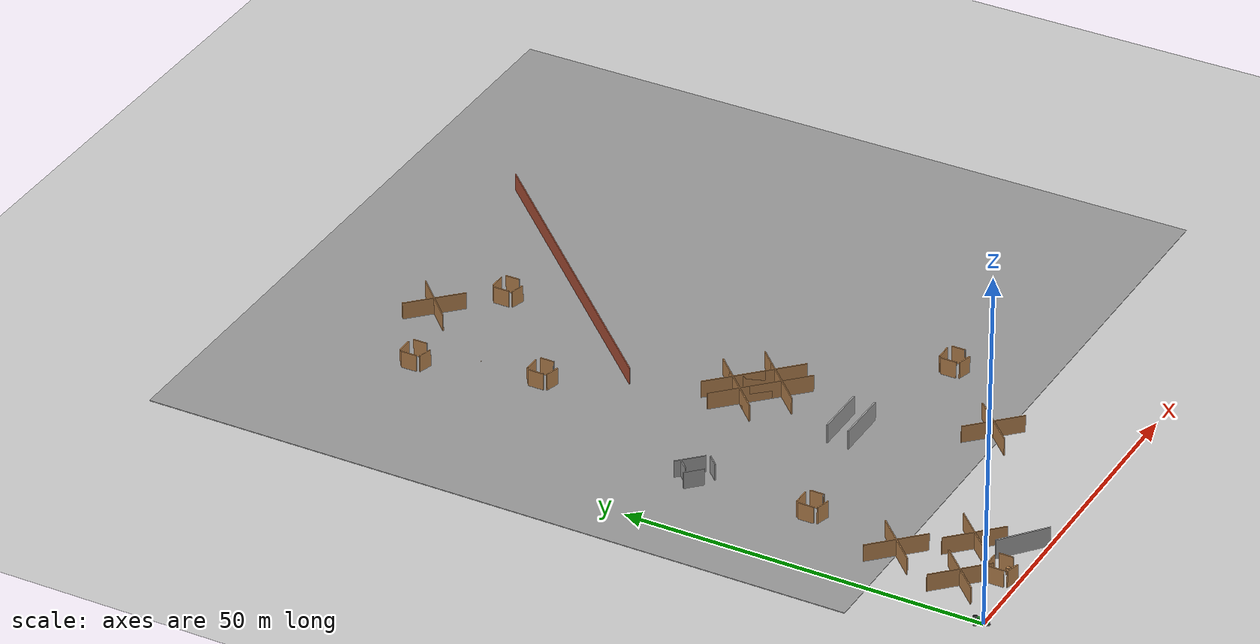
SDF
<sdf version="1.5">
 <world name="default">
  <model name="mard"><static>0</static></model>
  <model name="ground_plane">
   <static>1</static>
   <link name="link">
    <collision name="collision">
     <geometry><plane><normal>0 0 1</normal><size>100 100</size></plane></geometry>
     <surface><friction><ode><mu>100</mu><mu2>50</mu2></ode></friction></surface>
    </collision>
    <visual name="visual">
     <cast_shadows>0</cast_shadows>
     <geometry><plane><normal>0 0 1</normal><size>100 100</size></plane></geometry>
     <material>
      <script><uri>file://media/materials/scripts/gazebo.material</uri><name>Gazebo/Grey</name></script>
     </material>
    </visual>
   </link>
  </model>
  <model name="ground_plane_3">
   <static>1</static>
   <link name="link">
    <collision name="collision">
     <geometry><plane><normal>0 0 1</normal><size>100 100</size></plane></geometry>
     <surface><friction><ode><mu>100</mu><mu2>50</mu2></ode></friction></surface>
    </collision>
    <visual name="visual">
     <cast_shadows>0</cast_shadows>
     <geometry><plane><normal>0 0 1</normal><size>100 100</size></plane></geometry>
     <material>
      <script><uri>file://media/materials/scripts/gazebo.material</uri><name>Gazebo/Grey</name></script>
     </material>
    </visual>
   </link>
   <pose>44 66 0 0 -0 0</pose>
  </model>
  <model name="wall1_clone_3">
   <pose>43.532 81.5625 0 0 -0 0.808575</pose>
   <link name="Wall_0">
    <collision name="Wall_0_Collision">
     <geometry><box><size>50 0.15 2.5</size></box></geometry>
     <pose>0 0 1.25 0 -0 0</pose>
    </collision>
    <visual name="Wall_0_Visual">
     <pose>0 0 1.25 0 -0 0</pose>
     <geometry><box><size>50 0.15 2.5</size></box></geometry>
     <material>
      <script><uri>file://media/materials/scripts/gazebo.material</uri><name>Gazebo/Bricks</name></script>
      <ambient>1 1 1 1</ambient>
     </material>
    </visual>
    <pose>1e-06 0 0 0 -0 3.14159</pose>
   </link>
   <static>1</static>
  </model>
  <model name="car">
   <link name="chassis">
    <pose>0 0 0.3 0 -0 0</pose>
    <collision name="collision"><geometry><box><size>2 1 0.2</size></box></geometry></collision>
    <visual name="visual">
     <geometry><box><size>2 1 0.2</size></box></geometry>
     <material>
      <script><uri>file://media/materials/scripts/gazebo.material</uri><name>Gazebo/Green</name></script>
     </material>
    </visual>
    <inertial>
     <inertia><ixx>1</ixx><ixy>0</ixy><ixz>0</ixz><iyy>1</iyy><iyz>0</iyz><izz>1</izz></inertia>
     <mass>1</mass>
    </inertial>
   </link>
   <link name="front_left_wheel">
    <pose>0.8 0.6 0.3 0 1.5707 1.5707</pose>
    <collision name="collision">
     <geometry><cylinder><radius>0.3</radius><length>0.1</length></cylinder></geometry>
    </collision>
    <visual name="visual">
     <geometry><cylinder><radius>0.3</radius><length>0.1</length></cylinder></geometry>
     <material>
      <script><uri>file://media/materials/scripts/gazebo.material</uri><name>Gazebo/Black</name></script>
     </material>
    </visual>
    <inertial>
     <inertia><ixx>1</ixx><ixy>0</ixy><ixz>0</ixz><iyy>1</iyy><iyz>0</iyz><izz>1</izz></inertia>
     <mass>1</mass>
    </inertial>
   </link>
   <link name="front_right_wheel">
    <pose>0.8 -0.6 0.3 0 1.5707 1.5707</pose>
    <collision name="collision">
     <geometry><cylinder><radius>0.3</radius><length>0.1</length></cylinder></geometry>
    </collision>
    <visual name="visual">
     <geometry><cylinder><radius>0.3</radius><length>0.1</length></cylinder></geometry>
     <material>
      <script><uri>file://media/materials/scripts/gazebo.material</uri><name>Gazebo/Black</name></script>
     </material>
    </visual>
    <inertial>
     <inertia><ixx>1</ixx><ixy>0</ixy><ixz>0</ixz><iyy>1</iyy><iyz>0</iyz><izz>1</izz></inertia>
     <mass>1</mass>
    </inertial>
   </link>
   <link name="back_right_wheel">
    <pose>-0.8 -0.6 0.3 0 1.5707 1.5707</pose>
    <collision name="collision">
     <geometry><cylinder><radius>0.3</radius><length>0.1</length></cylinder></geometry>
    </collision>
    <visual name="visual">
     <geometry><cylinder><radius>0.3</radius><length>0.1</length></cylinder></geometry>
     <material>
      <script><uri>file://media/materials/scripts/gazebo.material</uri><name>Gazebo/Black</name></script>
     </material>
    </visual>
    <inertial>
     <inertia><ixx>1</ixx><ixy>0</ixy><ixz>0</ixz><iyy>1</iyy><iyz>0</iyz><izz>1</izz></inertia>
     <mass>1</mass>
    </inertial>
   </link>
   <link name="back_left_wheel">
    <pose>-0.8 0.6 0.3 0 1.5707 1.5707</pose>
    <collision name="collision">
     <geometry><cylinder><radius>0.3</radius><length>0.1</length></cylinder></geometry>
    </collision>
    <visual name="visual">
     <geometry><cylinder><radius>0.3</radius><length>0.1</length></cylinder></geometry>
     <material>
      <script><uri>file://media/materials/scripts/gazebo.material</uri><name>Gazebo/Black</name></script>
     </material>
    </visual>
    <inertial>
     <inertia><ixx>1</ixx><ixy>0</ixy><ixz>0</ixz><iyy>1</iyy><iyz>0</iyz><izz>1</izz></inertia>
     <mass>1</mass>
    </inertial>
   </link>
   <link name="gas_pedal">
    <pose>0.3 0.1 0.5 0 -0 0</pose>
    <collision name="collision"><geometry><box><size>0.1 0.1 0.1</size></box></geometry></collision>
    <visual name="visual">
     <geometry><box><size>0.1 0.1 0.1</size></box></geometry>
     <material>
      <script><uri>file://media/materials/scripts/gazebo.material</uri><name>Gazebo/Red</name></script>
     </material>
    </visual>
    <inertial>
     <inertia><ixx>1</ixx><ixy>0</ixy><ixz>0</ixz><iyy>1</iyy><iyz>0</iyz><izz>1</izz></inertia>
     <mass>1</mass>
    </inertial>
   </link>
   <link name="brake_pedal">
    <pose>0.3 0.25 0.5 0 -0 0</pose>
    <collision name="collision"><geometry><box><size>0.1 0.1 0.1</size></box></geometry></collision>
    <visual name="visual">
     <geometry><box><size>0.1 0.1 0.1</size></box></geometry>
     <material>
      <script><uri>file://media/materials/scripts/gazebo.material</uri><name>Gazebo/Blue</name></script>
     </material>
    </visual>
    <inertial>
     <inertia><ixx>1</ixx><ixy>0</ixy><ixz>0</ixz><iyy>1</iyy><iyz>0</iyz><izz>1</izz></inertia>
     <mass>1</mass>
    </inertial>
   </link>
   <link name="steering_wheel">
    <pose>0.3 0.2 1 0 1.5707 0</pose>
    <collision name="collision">
     <geometry><cylinder><radius>0.1</radius><length>0.01</length></cylinder></geometry>
    </collision>
    <visual name="visual">
     <geometry><cylinder><radius>0.1</radius><length>0.01</length></cylinder></geometry>
     <material>
      <script><uri>file://media/materials/scripts/gazebo.material</uri><name>Gazebo/Blue</name></script>
     </material>
    </visual>
    <inertial>
     <inertia><ixx>1</ixx><ixy>0</ixy><ixz>0</ixz><iyy>1</iyy><iyz>0</iyz><izz>1</izz></inertia>
     <mass>1</mass>
    </inertial>
   </link>
   <joint name="gas_joint" type="prismatic">
    <parent>chassis</parent>
    <child>gas_pedal</child>
    <axis>
     <xyz>1 0 0</xyz>
     <limit><lower>0</lower><upper>0.2</upper></limit>
     <use_parent_model_frame>1</use_parent_model_frame>
     <dynamics><spring_reference>0</spring_reference><spring_stiffness>0</spring_stiffness></dynamics>
    </axis>
   </joint>
   <joint name="brake_joint" type="prismatic">
    <parent>chassis</parent>
    <child>brake_pedal</child>
    <axis>
     <xyz>1 0 0</xyz>
     <limit><lower>0</lower><upper>0.2</upper></limit>
     <use_parent_model_frame>1</use_parent_model_frame>
     <dynamics><spring_reference>0</spring_reference><spring_stiffness>0</spring_stiffness></dynamics>
    </axis>
   </joint>
   <joint name="steering_joint" type="revolute">
    <parent>chassis</parent>
    <child>steering_wheel</child>
    <axis>
     <xyz>1 0 0</xyz>
     <limit><lower>-7.853</lower><upper>7.853</upper></limit>
     <use_parent_model_frame>1</use_parent_model_frame>
     <dynamics><spring_reference>0</spring_reference><spring_stiffness>0</spring_stiffness></dynamics>
    </axis>
   </joint>
   <joint name="front_left_joint" type="revolute2">
    <parent>chassis</parent>
    <child>front_left_wheel</child>
    <axis>
     <xyz>0 0 1</xyz>
     <limit><lower>-0.013155</lower><upper>-0.013155</upper></limit>
     <use_parent_model_frame>1</use_parent_model_frame>
     <dynamics><spring_reference>0</spring_reference><spring_stiffness>0</spring_stiffness></dynamics>
    </axis>
    <axis2>
     <xyz>0 1 0</xyz>
     <use_parent_model_frame>1</use_parent_model_frame>
     <dynamics><spring_reference>0</spring_reference><spring_stiffness>0</spring_stiffness></dynamics>
    </axis2>
    <physics><ode><limit><cfm>0</cfm><erp>0.9</erp></limit></ode></physics>
   </joint>
   <joint name="front_right_joint" type="revolute2">
    <parent>chassis</parent>
    <child>front_right_wheel</child>
    <axis>
     <xyz>0 0 1</xyz>
     <limit><lower>-0.013155</lower><upper>-0.013155</upper></limit>
     <use_parent_model_frame>1</use_parent_model_frame>
     <dynamics><spring_reference>0</spring_reference><spring_stiffness>0</spring_stiffness></dynamics>
    </axis>
    <axis2>
     <xyz>0 1 0</xyz>
     <use_parent_model_frame>1</use_parent_model_frame>
     <dynamics><spring_reference>0</spring_reference><spring_stiffness>0</spring_stiffness></dynamics>
    </axis2>
    <physics><ode><limit><cfm>0</cfm><erp>0.9</erp></limit></ode></physics>
   </joint>
   <joint name="back_right_joint" type="revolute2">
    <parent>chassis</parent>
    <child>back_right_wheel</child>
    <axis>
     <xyz>0 0 1</xyz>
     <limit><lower>0</lower><upper>0</upper></limit>
     <use_parent_model_frame>1</use_parent_model_frame>
     <dynamics><spring_reference>0</spring_reference><spring_stiffness>0</spring_stiffness></dynamics>
    </axis>
    <axis2>
     <xyz>0 1 0</xyz>
     <use_parent_model_frame>1</use_parent_model_frame>
     <dynamics><spring_reference>0</spring_reference><spring_stiffness>0</spring_stiffness></dynamics>
    </axis2>
    <physics><ode><limit><cfm>0</cfm><erp>0.9</erp></limit></ode></physics>
   </joint>
   <joint name="back_left_joint" type="revolute2">
    <parent>chassis</parent>
    <child>back_left_wheel</child>
    <axis>
     <xyz>0 0 1</xyz>
     <limit><lower>0</lower><upper>0</upper></limit>
     <use_parent_model_frame>1</use_parent_model_frame>
     <dynamics><spring_reference>0</spring_reference><spring_stiffness>0</spring_stiffness></dynamics>
    </axis>
    <axis2>
     <xyz>0 1 0</xyz>
     <use_parent_model_frame>1</use_parent_model_frame>
     <dynamics><spring_reference>0</spring_reference><spring_stiffness>0</spring_stiffness></dynamics>
    </axis2>
    <physics><ode><limit><cfm>0</cfm><erp>0.9</erp></limit></ode></physics>
   </joint>
   <plugin name="vehicle" filename="libVehiclePlugin.so">
    <front_left>front_left_joint</front_left>
    <front_right>front_right_joint</front_right>
    <back_left>back_left_joint</back_left>
    <back_right>back_right_joint</back_right>
    <gas>gas_joint</gas>
    <brake>brake_joint</brake>
    <steering>steering_joint</steering>
    <front_power>10</front_power>
    <rear_power>10</rear_power>
    <tire_angle_range>0.5</tire_angle_range>
    <max_speed>10</max_speed>
    <aero_load>0.1</aero_load>
   </plugin>
   <pose>-0.565154 0.010788 0.649842 -1.56757 0.001139 -1.11247</pose>
  </model>
  <model name="obs3_2">
   <pose>29 49 0 0 -0 0</pose>
   <link name="Wall_0">
    <collision name="Wall_0_Collision">
     <geometry><box><size>8.63528 0.15 2.5</size></box></geometry>
     <pose>0 0 1.25 0 -0 0</pose>
    </collision>
    <visual name="Wall_0_Visual">
     <pose>0 0 1.25 0 -0 0</pose>
     <geometry><box><size>8.63528 0.15 2.5</size></box></geometry>
     <material>
      <script><uri>file://media/materials/scripts/gazebo.material</uri><name>Gazebo/Wood</name></script>
      <ambient>1 1 1 1</ambient>
     </material>
    </visual>
    <pose>0 0 0 0 0 -0.785398</pose>
   </link>
   <link name="Wall_2">
    <collision name="Wall_2_Collision">
     <geometry><box><size>8.63528 0.15 2.5</size></box></geometry>
     <pose>0 0 1.25 0 -0 0</pose>
    </collision>
    <visual name="Wall_2_Visual">
     <pose>0 0 1.25 0 -0 0</pose>
     <geometry><box><size>8.63528 0.15 2.5</size></box></geometry>
     <material>
      <script><uri>file://media/materials/scripts/gazebo.material</uri><name>Gazebo/Wood</name></script>
      <ambient>1 1 1 1</ambient>
     </material>
    </visual>
    <pose>0 0 0 0 0 -2.35619</pose>
   </link>
   <static>1</static>
  </model>
  <model name="obs3_7">
   <pose>8 16 0 0 -0 0</pose>
   <link name="Wall_0">
    <collision name="Wall_0_Collision">
     <geometry><box><size>8.63528 0.15 2.5</size></box></geometry>
     <pose>0 0 1.25 0 -0 0</pose>
    </collision>
    <visual name="Wall_0_Visual">
     <pose>0 0 1.25 0 -0 0</pose>
     <geometry><box><size>8.63528 0.15 2.5</size></box></geometry>
     <material>
      <script><uri>file://media/materials/scripts/gazebo.material</uri><name>Gazebo/Wood</name></script>
      <ambient>1 1 1 1</ambient>
     </material>
    </visual>
    <pose>0 0 0 0 0 -0.785398</pose>
   </link>
   <link name="Wall_2">
    <collision name="Wall_2_Collision">
     <geometry><box><size>8.63528 0.15 2.5</size></box></geometry>
     <pose>0 0 1.25 0 -0 0</pose>
    </collision>
    <visual name="Wall_2_Visual">
     <pose>0 0 1.25 0 -0 0</pose>
     <geometry><box><size>8.63528 0.15 2.5</size></box></geometry>
     <material>
      <script><uri>file://media/materials/scripts/gazebo.material</uri><name>Gazebo/Wood</name></script>
      <ambient>1 1 1 1</ambient>
     </material>
    </visual>
    <pose>0 0 0 0 0 -2.35619</pose>
   </link>
   <static>1</static>
  </model>
  <model name="obs1_5">
   <pose>11 29 0 0 -0 0</pose>
   <link name="Wall_10">
    <collision name="Wall_10_Collision">
     <geometry><box><size>2 0.15 2.5</size></box></geometry>
     <pose>0 0 1.25 0 -0 0</pose>
    </collision>
    <visual name="Wall_10_Visual">
     <pose>0 0 1.25 0 -0 0</pose>
     <geometry><box><size>2 0.15 2.5</size></box></geometry>
     <material>
      <script><uri>file://media/materials/scripts/gazebo.material</uri><name>Gazebo/Wood</name></script>
      <ambient>1 1 1 1</ambient>
     </material>
    </visual>
    <pose>-0.505188 -1.46687 0 0 0 -0.261799</pose>
   </link>
   <link name="Wall_2">
    <collision name="Wall_2_Collision">
     <geometry><box><size>2.25 0.15 2.5</size></box></geometry>
     <pose>0 0 1.25 0 -0 0</pose>
    </collision>
    <visual name="Wall_2_Visual">
     <pose>0 0 1.25 0 -0 0</pose>
     <geometry><box><size>2.25 0.15 2.5</size></box></geometry>
     <material>
      <script><uri>file://media/materials/scripts/gazebo.material</uri><name>Gazebo/Wood</name></script>
      <ambient>1 1 1 1</ambient>
     </material>
    </visual>
    <pose>-1.58039 0.313508 0 0 0 -1.5708</pose>
   </link>
   <link name="Wall_5">
    <collision name="Wall_5_Collision">
     <geometry><box><size>2.25 0.15 2.5</size></box></geometry>
     <pose>0 0 1.25 0 -0 0</pose>
    </collision>
    <visual name="Wall_5_Visual">
     <pose>0 0 1.25 0 -0 0</pose>
     <geometry><box><size>2.25 0.15 2.5</size></box></geometry>
     <material>
      <script><uri>file://media/materials/scripts/gazebo.material</uri><name>Gazebo/Wood</name></script>
      <ambient>1 1 1 1</ambient>
     </material>
    </visual>
    <pose>-0.185262 1.72313 0 0 -0 0</pose>
   </link>
   <link name="Wall_7">
    <collision name="Wall_7_Collision">
     <geometry><box><size>2 0.15 2.5</size></box></geometry>
     <pose>0 0 1.25 0 -0 0</pose>
    </collision>
    <visual name="Wall_7_Visual">
     <pose>0 0 1.25 0 -0 0</pose>
     <geometry><box><size>2 0.15 2.5</size></box></geometry>
     <material>
      <script><uri>file://media/materials/scripts/gazebo.material</uri><name>Gazebo/Wood</name></script>
      <ambient>1 1 1 1</ambient>
     </material>
    </visual>
    <pose>1.58039 0.398833 0 0 0 -1.5708</pose>
   </link>
   <link name="Wall_8">
    <collision name="Wall_8_Collision">
     <geometry><box><size>0.15 0.15 2.5</size></box></geometry>
     <pose>0 0 1.25 0 -0 0</pose>
    </collision>
    <visual name="Wall_8_Visual">
     <pose>0 0 1.25 0 -0 0</pose>
     <geometry><box><size>0.15 0.15 2.5</size></box></geometry>
     <material>
      <script><uri>file://media/materials/scripts/gazebo.material</uri><name>Gazebo/Grey</name></script>
      <ambient>1 1 1 1</ambient>
     </material>
    </visual>
    <pose>1.58039 -0.526167 0 0 -0 0</pose>
   </link>
   <static>1</static>
  </model>
  <model name="obs2_5">
   <pose>11 46 0 0 -0 0</pose>
   <link name="Wall_0">
    <collision name="Wall_0_Collision">
     <geometry><box><size>2 0.15 2.5</size></box></geometry>
     <pose>0 0 1.25 0 -0 0</pose>
    </collision>
    <visual name="Wall_0_Visual">
     <pose>0 0 1.25 0 -0 0</pose>
     <geometry><box><size>2 0.15 2.5</size></box></geometry>
     <material>
      <script><uri>file://media/materials/scripts/gazebo.material</uri><name>Gazebo/Grey</name></script>
      <ambient>1 1 1 1</ambient>
     </material>
    </visual>
    <pose>-0.796332 1.10862 0 0 -0 0.785398</pose>
   </link>
   <link name="Wall_2">
    <collision name="Wall_2_Collision">
     <geometry><box><size>4.25 0.15 2.5</size></box></geometry>
     <pose>0 0 1.25 0 -0 0</pose>
    </collision>
    <visual name="Wall_2_Visual">
     <pose>0 0 1.25 0 -0 0</pose>
     <geometry><box><size>4.25 0.15 2.5</size></box></geometry>
     <material>
      <script><uri>file://media/materials/scripts/gazebo.material</uri><name>Gazebo/Grey</name></script>
      <ambient>1 1 1 1</ambient>
     </material>
    </visual>
    <pose>0.773928 0.982661 0 0 0 -0.785398</pose>
   </link>
   <link name="Wall_4">
    <collision name="Wall_4_Collision">
     <geometry><box><size>2.75 0.15 2.5</size></box></geometry>
     <pose>0 0 1.25 0 -0 0</pose>
    </collision>
    <visual name="Wall_4_Visual">
     <pose>0 0 1.25 0 -0 0</pose>
     <geometry><box><size>2.75 0.15 2.5</size></box></geometry>
     <material>
      <script><uri>file://media/materials/scripts/gazebo.material</uri><name>Gazebo/Grey</name></script>
      <ambient>1 1 1 1</ambient>
     </material>
    </visual>
    <pose>-1.45556 -0.740711 0 0 0 -0.785398</pose>
   </link>
   <link name="Wall_6">
    <collision name="Wall_6_Collision">
     <geometry><box><size>2 0.15 2.5</size></box></geometry>
     <pose>0 0 1.25 0 -0 0</pose>
    </collision>
    <visual name="Wall_6_Visual">
     <pose>0 0 1.25 0 -0 0</pose>
     <geometry><box><size>2 0.15 2.5</size></box></geometry>
     <material>
      <script><uri>file://media/materials/scripts/gazebo.material</uri><name>Gazebo/Grey</name></script>
      <ambient>1 1 1 1</ambient>
     </material>
    </visual>
    <pose>1.72073 -1.77816 0 0 -0 0.785398</pose>
   </link>
   <static>1</static>
  </model>
  <model name="obs3_2_clone">
   <pose>31 51 0 0 -0 0</pose>
   <link name="Wall_0">
    <collision name="Wall_0_Collision">
     <geometry><box><size>8.63528 0.15 2.5</size></box></geometry>
     <pose>0 0 1.25 0 -0 0</pose>
    </collision>
    <visual name="Wall_0_Visual">
     <pose>0 0 1.25 0 -0 0</pose>
     <geometry><box><size>8.63528 0.15 2.5</size></box></geometry>
     <material>
      <script><uri>file://media/materials/scripts/gazebo.material</uri><name>Gazebo/Wood</name></script>
      <ambient>1 1 1 1</ambient>
     </material>
    </visual>
    <pose>0 0 0 0 0 -0.785398</pose>
   </link>
   <link name="Wall_2">
    <collision name="Wall_2_Collision">
     <geometry><box><size>8.63528 0.15 2.5</size></box></geometry>
     <pose>0 0 1.25 0 -0 0</pose>
    </collision>
    <visual name="Wall_2_Visual">
     <pose>0 0 1.25 0 -0 0</pose>
     <geometry><box><size>8.63528 0.15 2.5</size></box></geometry>
     <material>
      <script><uri>file://media/materials/scripts/gazebo.material</uri><name>Gazebo/Wood</name></script>
      <ambient>1 1 1 1</ambient>
     </material>
    </visual>
    <pose>0 0 0 0 0 -2.35619</pose>
   </link>
   <static>1</static>
  </model>
  <model name="obs3_2_clone_0">
   <pose>33 45 0 0 -0 0</pose>
   <link name="Wall_0">
    <collision name="Wall_0_Collision">
     <geometry><box><size>8.63528 0.15 2.5</size></box></geometry>
     <pose>0 0 1.25 0 -0 0</pose>
    </collision>
    <visual name="Wall_0_Visual">
     <pose>0 0 1.25 0 -0 0</pose>
     <geometry><box><size>8.63528 0.15 2.5</size></box></geometry>
     <material>
      <script><uri>file://media/materials/scripts/gazebo.material</uri><name>Gazebo/Wood</name></script>
      <ambient>1 1 1 1</ambient>
     </material>
    </visual>
    <pose>0 0 0 0 0 -0.785398</pose>
   </link>
   <link name="Wall_2">
    <collision name="Wall_2_Collision">
     <geometry><box><size>8.63528 0.15 2.5</size></box></geometry>
     <pose>0 0 1.25 0 -0 0</pose>
    </collision>
    <visual name="Wall_2_Visual">
     <pose>0 0 1.25 0 -0 0</pose>
     <geometry><box><size>8.63528 0.15 2.5</size></box></geometry>
     <material>
      <script><uri>file://media/materials/scripts/gazebo.material</uri><name>Gazebo/Wood</name></script>
      <ambient>1 1 1 1</ambient>
     </material>
    </visual>
    <pose>0 0 0 0 0 -2.35619</pose>
   </link>
   <static>1</static>
  </model>
  <model name="obs3_2_clone_1">
   <pose>35 47 0 0 -0 0</pose>
   <link name="Wall_0">
    <collision name="Wall_0_Collision">
     <geometry><box><size>8.63528 0.15 2.5</size></box></geometry>
     <pose>0 0 1.25 0 -0 0</pose>
    </collision>
    <visual name="Wall_0_Visual">
     <pose>0 0 1.25 0 -0 0</pose>
     <geometry><box><size>8.63528 0.15 2.5</size></box></geometry>
     <material>
      <script><uri>file://media/materials/scripts/gazebo.material</uri><name>Gazebo/Wood</name></script>
      <ambient>1 1 1 1</ambient>
     </material>
    </visual>
    <pose>0 0 0 0 0 -0.785398</pose>
   </link>
   <link name="Wall_2">
    <collision name="Wall_2_Collision">
     <geometry><box><size>8.63528 0.15 2.5</size></box></geometry>
     <pose>0 0 1.25 0 -0 0</pose>
    </collision>
    <visual name="Wall_2_Visual">
     <pose>0 0 1.25 0 -0 0</pose>
     <geometry><box><size>8.63528 0.15 2.5</size></box></geometry>
     <material>
      <script><uri>file://media/materials/scripts/gazebo.material</uri><name>Gazebo/Wood</name></script>
      <ambient>1 1 1 1</ambient>
     </material>
    </visual>
    <pose>0 0 0 0 0 -2.35619</pose>
   </link>
   <static>1</static>
  </model>
  <model name="obs3_4_clone">
   <pose>37.4503 17 0 0 -0 0</pose>
   <link name="Wall_0">
    <collision name="Wall_0_Collision">
     <geometry><box><size>8.63528 0.15 2.5</size></box></geometry>
     <pose>0 0 1.25 0 -0 0</pose>
    </collision>
    <visual name="Wall_0_Visual">
     <pose>0 0 1.25 0 -0 0</pose>
     <geometry><box><size>8.63528 0.15 2.5</size></box></geometry>
     <material>
      <script><uri>file://media/materials/scripts/gazebo.material</uri><name>Gazebo/Wood</name></script>
      <ambient>1 1 1 1</ambient>
     </material>
    </visual>
    <pose>0 0 0 0 0 -0.785398</pose>
   </link>
   <link name="Wall_2">
    <collision name="Wall_2_Collision">
     <geometry><box><size>8.63528 0.15 2.5</size></box></geometry>
     <pose>0 0 1.25 0 -0 0</pose>
    </collision>
    <visual name="Wall_2_Visual">
     <pose>0 0 1.25 0 -0 0</pose>
     <geometry><box><size>8.63528 0.15 2.5</size></box></geometry>
     <material>
      <script><uri>file://media/materials/scripts/gazebo.material</uri><name>Gazebo/Wood</name></script>
      <ambient>1 1 1 1</ambient>
     </material>
    </visual>
    <pose>0 0 0 0 0 -2.35619</pose>
   </link>
   <static>1</static>
  </model>
  <model name="obs1_4_clone">
   <pose>49 28 0 0 -0 0</pose>
   <link name="Wall_10">
    <collision name="Wall_10_Collision">
     <geometry><box><size>2 0.15 2.5</size></box></geometry>
     <pose>0 0 1.25 0 -0 0</pose>
    </collision>
    <visual name="Wall_10_Visual">
     <pose>0 0 1.25 0 -0 0</pose>
     <geometry><box><size>2 0.15 2.5</size></box></geometry>
     <material>
      <script><uri>file://media/materials/scripts/gazebo.material</uri><name>Gazebo/Wood</name></script>
      <ambient>1 1 1 1</ambient>
     </material>
    </visual>
    <pose>-0.505188 -1.46687 0 0 0 -0.261799</pose>
   </link>
   <link name="Wall_2">
    <collision name="Wall_2_Collision">
     <geometry><box><size>2.25 0.15 2.5</size></box></geometry>
     <pose>0 0 1.25 0 -0 0</pose>
    </collision>
    <visual name="Wall_2_Visual">
     <pose>0 0 1.25 0 -0 0</pose>
     <geometry><box><size>2.25 0.15 2.5</size></box></geometry>
     <material>
      <script><uri>file://media/materials/scripts/gazebo.material</uri><name>Gazebo/Wood</name></script>
      <ambient>1 1 1 1</ambient>
     </material>
    </visual>
    <pose>-1.58039 0.313508 0 0 0 -1.5708</pose>
   </link>
   <link name="Wall_5">
    <collision name="Wall_5_Collision">
     <geometry><box><size>2.25 0.15 2.5</size></box></geometry>
     <pose>0 0 1.25 0 -0 0</pose>
    </collision>
    <visual name="Wall_5_Visual">
     <pose>0 0 1.25 0 -0 0</pose>
     <geometry><box><size>2.25 0.15 2.5</size></box></geometry>
     <material>
      <script><uri>file://media/materials/scripts/gazebo.material</uri><name>Gazebo/Wood</name></script>
      <ambient>1 1 1 1</ambient>
     </material>
    </visual>
    <pose>-0.185262 1.72313 0 0 -0 0</pose>
   </link>
   <link name="Wall_7">
    <collision name="Wall_7_Collision">
     <geometry><box><size>2 0.15 2.5</size></box></geometry>
     <pose>0 0 1.25 0 -0 0</pose>
    </collision>
    <visual name="Wall_7_Visual">
     <pose>0 0 1.25 0 -0 0</pose>
     <geometry><box><size>2 0.15 2.5</size></box></geometry>
     <material>
      <script><uri>file://media/materials/scripts/gazebo.material</uri><name>Gazebo/Wood</name></script>
      <ambient>1 1 1 1</ambient>
     </material>
    </visual>
    <pose>1.58039 0.398833 0 0 0 -1.5708</pose>
   </link>
   <link name="Wall_8">
    <collision name="Wall_8_Collision">
     <geometry><box><size>0.15 0.15 2.5</size></box></geometry>
     <pose>0 0 1.25 0 -0 0</pose>
    </collision>
    <visual name="Wall_8_Visual">
     <pose>0 0 1.25 0 -0 0</pose>
     <geometry><box><size>0.15 0.15 2.5</size></box></geometry>
     <material>
      <script><uri>file://media/materials/scripts/gazebo.material</uri><name>Gazebo/Grey</name></script>
      <ambient>1 1 1 1</ambient>
     </material>
    </visual>
    <pose>1.58039 -0.526167 0 0 -0 0</pose>
   </link>
   <static>1</static>
  </model>
  <model name="grey_wall_clone_1">
   <static>1</static>
   <link name="link">
    <pose>0 0 1.4 0 -0 0</pose>
    <collision name="collision"><geometry><box><size>7.5 0.2 2.8</size></box></geometry></collision>
    <visual name="visual">
     <cast_shadows>0</cast_shadows>
     <geometry><box><size>7.5 0.2 2.8</size></box></geometry>
     <material>
      <script>
       <uri>model://grey_wall/materials/scripts</uri>
       <uri>model://grey_wall/materials/textures</uri>
       <name>vrc/grey_wall</name>
      </script>
     </material>
    </visual>
   </link>
   <pose>30 35 0 0 -0 0</pose>
  </model>
  <model name="grey_wall_clone_1_clone">
   <static>1</static>
   <link name="link">
    <pose>0 0 1.4 0 -0 0</pose>
    <collision name="collision"><geometry><box><size>7.5 0.2 2.8</size></box></geometry></collision>
    <visual name="visual">
     <cast_shadows>0</cast_shadows>
     <geometry><box><size>7.5 0.2 2.8</size></box></geometry>
     <material>
      <script>
       <uri>model://grey_wall/materials/scripts</uri>
       <uri>model://grey_wall/materials/textures</uri>
       <name>vrc/grey_wall</name>
      </script>
     </material>
    </visual>
   </link>
   <pose>30 32 0 0 -0 0</pose>
  </model>
  <model name="wood_cube_10cm">
   <link name="link">
    <pose>0 0 0.05 0 -0 0</pose>
    <inertial>
     <mass>0.5167</mass>
     <inertia>
      <ixx>0.000861167</ixx>
      <ixy>0</ixy>
      <ixz>0</ixz>
      <iyy>0.000861167</iyy>
      <iyz>0</iyz>
      <izz>0.000861167</izz>
     </inertia>
    </inertial>
    <collision name="collision">
     <geometry><box><size>0.1 0.1 0.1</size></box></geometry>
     <surface>
      <contact>
       <poissons_ratio>0.347</poissons_ratio>
       <elastic_modulus>8.8e+09</elastic_modulus>
       <ode><kp>100000</kp><kd>100</kd><max_vel>100</max_vel><min_depth>0.001</min_depth></ode>
      </contact>
      <friction>
       <torsional>
        <coefficient>1</coefficient>
        <use_patch_radius>0</use_patch_radius>
        <surface_radius>0.01</surface_radius>
       </torsional>
      </friction>
     </surface>
    </collision>
    <visual name="visual">
     <geometry><box><size>0.1 0.1 0.1</size></box></geometry>
     <material>
      <script><uri>file://media/materials/scripts/gazebo.material</uri><name>Gazebo/Wood</name></script>
     </material>
    </visual>
   </link>
   <pose>22 83 -0.001001 0 -0 0</pose>
  </model>
  <model name="obs1_5_clone">
   <pose>9.76933 2.06869 0 0 -0 0</pose>
   <link name="Wall_10">
    <collision name="Wall_10_Collision">
     <geometry><box><size>2 0.15 2.5</size></box></geometry>
     <pose>0 0 1.25 0 -0 0</pose>
    </collision>
    <visual name="Wall_10_Visual">
     <pose>0 0 1.25 0 -0 0</pose>
     <geometry><box><size>2 0.15 2.5</size></box></geometry>
     <material>
      <script><uri>file://media/materials/scripts/gazebo.material</uri><name>Gazebo/Wood</name></script>
      <ambient>1 1 1 1</ambient>
     </material>
    </visual>
    <pose>-0.505188 -1.46687 0 0 0 -0.261799</pose>
   </link>
   <link name="Wall_2">
    <collision name="Wall_2_Collision">
     <geometry><box><size>2.25 0.15 2.5</size></box></geometry>
     <pose>0 0 1.25 0 -0 0</pose>
    </collision>
    <visual name="Wall_2_Visual">
     <pose>0 0 1.25 0 -0 0</pose>
     <geometry><box><size>2.25 0.15 2.5</size></box></geometry>
     <material>
      <script><uri>file://media/materials/scripts/gazebo.material</uri><name>Gazebo/Wood</name></script>
      <ambient>1 1 1 1</ambient>
     </material>
    </visual>
    <pose>-1.58039 0.313508 0 0 0 -1.5708</pose>
   </link>
   <link name="Wall_5">
    <collision name="Wall_5_Collision">
     <geometry><box><size>2.25 0.15 2.5</size></box></geometry>
     <pose>0 0 1.25 0 -0 0</pose>
    </collision>
    <visual name="Wall_5_Visual">
     <pose>0 0 1.25 0 -0 0</pose>
     <geometry><box><size>2.25 0.15 2.5</size></box></geometry>
     <material>
      <script><uri>file://media/materials/scripts/gazebo.material</uri><name>Gazebo/Wood</name></script>
      <ambient>1 1 1 1</ambient>
     </material>
    </visual>
    <pose>-0.185262 1.72313 0 0 -0 0</pose>
   </link>
   <link name="Wall_7">
    <collision name="Wall_7_Collision">
     <geometry><box><size>2 0.15 2.5</size></box></geometry>
     <pose>0 0 1.25 0 -0 0</pose>
    </collision>
    <visual name="Wall_7_Visual">
     <pose>0 0 1.25 0 -0 0</pose>
     <geometry><box><size>2 0.15 2.5</size></box></geometry>
     <material>
      <script><uri>file://media/materials/scripts/gazebo.material</uri><name>Gazebo/Wood</name></script>
      <ambient>1 1 1 1</ambient>
     </material>
    </visual>
    <pose>1.58039 0.398833 0 0 0 -1.5708</pose>
   </link>
   <link name="Wall_8">
    <collision name="Wall_8_Collision">
     <geometry><box><size>0.15 0.15 2.5</size></box></geometry>
     <pose>0 0 1.25 0 -0 0</pose>
    </collision>
    <visual name="Wall_8_Visual">
     <pose>0 0 1.25 0 -0 0</pose>
     <geometry><box><size>0.15 0.15 2.5</size></box></geometry>
     <material>
      <script><uri>file://media/materials/scripts/gazebo.material</uri><name>Gazebo/Grey</name></script>
      <ambient>1 1 1 1</ambient>
     </material>
    </visual>
    <pose>1.58039 -0.526167 0 0 -0 0</pose>
   </link>
   <static>1</static>
  </model>
  <model name="obs3_7_clone_0">
   <pose>14 8.13844 0 0 -0 0</pose>
   <link name="Wall_0">
    <collision name="Wall_0_Collision">
     <geometry><box><size>8.63528 0.15 2.5</size></box></geometry>
     <pose>0 0 1.25 0 -0 0</pose>
    </collision>
    <visual name="Wall_0_Visual">
     <pose>0 0 1.25 0 -0 0</pose>
     <geometry><box><size>8.63528 0.15 2.5</size></box></geometry>
     <material>
      <script><uri>file://media/materials/scripts/gazebo.material</uri><name>Gazebo/Wood</name></script>
      <ambient>1 1 1 1</ambient>
     </material>
    </visual>
    <pose>0 0 0 0 0 -0.785398</pose>
   </link>
   <link name="Wall_2">
    <collision name="Wall_2_Collision">
     <geometry><box><size>8.63528 0.15 2.5</size></box></geometry>
     <pose>0 0 1.25 0 -0 0</pose>
    </collision>
    <visual name="Wall_2_Visual">
     <pose>0 0 1.25 0 -0 0</pose>
     <geometry><box><size>8.63528 0.15 2.5</size></box></geometry>
     <material>
      <script><uri>file://media/materials/scripts/gazebo.material</uri><name>Gazebo/Wood</name></script>
      <ambient>1 1 1 1</ambient>
     </material>
    </visual>
    <pose>0 0 0 0 0 -2.35619</pose>
   </link>
   <static>1</static>
  </model>
  <model name="obs3_7_clone_1">
   <pose>5.99796 6.22966 0 0 -0 0</pose>
   <link name="Wall_0">
    <collision name="Wall_0_Collision">
     <geometry><box><size>8.63528 0.15 2.5</size></box></geometry>
     <pose>0 0 1.25 0 -0 0</pose>
    </collision>
    <visual name="Wall_0_Visual">
     <pose>0 0 1.25 0 -0 0</pose>
     <geometry><box><size>8.63528 0.15 2.5</size></box></geometry>
     <material>
      <script><uri>file://media/materials/scripts/gazebo.material</uri><name>Gazebo/Wood</name></script>
      <ambient>1 1 1 1</ambient>
     </material>
    </visual>
    <pose>0 0 0 0 0 -0.785398</pose>
   </link>
   <link name="Wall_2">
    <collision name="Wall_2_Collision">
     <geometry><box><size>8.63528 0.15 2.5</size></box></geometry>
     <pose>0 0 1.25 0 -0 0</pose>
    </collision>
    <visual name="Wall_2_Visual">
     <pose>0 0 1.25 0 -0 0</pose>
     <geometry><box><size>8.63528 0.15 2.5</size></box></geometry>
     <material>
      <script><uri>file://media/materials/scripts/gazebo.material</uri><name>Gazebo/Wood</name></script>
      <ambient>1 1 1 1</ambient>
     </material>
    </visual>
    <pose>0 0 0 0 0 -2.35619</pose>
   </link>
   <static>1</static>
  </model>
  <model name="grey_wall_clone_1_clone_clone">
   <static>1</static>
   <link name="link">
    <pose>0 0 1.4 0 -0 0</pose>
    <collision name="collision"><geometry><box><size>7.5 0.2 2.8</size></box></geometry></collision>
    <visual name="visual">
     <cast_shadows>0</cast_shadows>
     <geometry><box><size>7.5 0.2 2.8</size></box></geometry>
     <material>
      <script>
       <uri>model://grey_wall/materials/scripts</uri>
       <uri>model://grey_wall/materials/textures</uri>
       <name>vrc/grey_wall</name>
      </script>
     </material>
    </visual>
   </link>
   <pose>16.1553 2.51408 0 0 0 -0.69196</pose>
  </model>
  <model name="cabinet">
   <static>1</static>
   <link name="cabinet_bottom_plate">
    <inertial>
     <pose>0 0 -1 0 -0 0</pose>
     <inertia><ixx>2.05</ixx><ixy>0</ixy><ixz>0</ixz><iyy>2.05</iyy><iyz>0</iyz><izz>2.05</izz></inertia>
     <mass>25</mass>
    </inertial>
    <collision name="cabinet_bottom_plate_geom">
     <pose>0 0 0.01 0 -0 0</pose>
     <geometry><box><size>0.45 0.45 0.02</size></box></geometry>
    </collision>
    <visual name="cabinet_bottom_plate_geom_visual">
     <pose>0 0 0.01 0 -0 0</pose>
     <geometry><box><size>0.45 0.45 0.02</size></box></geometry>
     <material>
      <script><uri>file://media/materials/scripts/gazebo.material</uri><name>Gazebo/Wood</name></script>
     </material>
    </visual>
    <collision name="cabinet_bottom_plate_geom_cabinet_back_plate">
     <pose>0.235 0 0.51 0 -0 0</pose>
     <geometry><box><size>0.02 0.45 1.02</size></box></geometry>
    </collision>
    <visual name="cabinet_bottom_plate_geom_cabinet_back_plate_visual">
     <pose>0.235 0 0.51 0 -0 0</pose>
     <geometry><box><size>0.02 0.45 1.02</size></box></geometry>
     <material>
      <script><uri>file://media/materials/scripts/gazebo.material</uri><name>Gazebo/Wood</name></script>
     </material>
    </visual>
    <collision name="cabinet_bottom_plate_geom_cabinet_left_plate">
     <pose>0 0.235 0.51 0 -0 0</pose>
     <geometry><box><size>0.45 0.02 1.02</size></box></geometry>
    </collision>
    <visual name="cabinet_bottom_plate_geom_cabinet_left_plate_visual">
     <pose>0 0.235 0.51 0 -0 0</pose>
     <geometry><box><size>0.45 0.02 1.02</size></box></geometry>
     <material>
      <script><uri>file://media/materials/scripts/gazebo.material</uri><name>Gazebo/Wood</name></script>
     </material>
    </visual>
    <collision name="cabinet_bottom_plate_geom_cabinet_middle_plate">
     <pose>0 0 0.51 0 -0 0</pose>
     <geometry><box><size>0.45 0.45 0.02</size></box></geometry>
    </collision>
    <visual name="cabinet_bottom_plate_geom_cabinet_middle_plate_visual">
     <pose>0 0 0.51 0 -0 0</pose>
     <geometry><box><size>0.45 0.45 0.02</size></box></geometry>
     <material>
      <script><uri>file://media/materials/scripts/gazebo.material</uri><name>Gazebo/Wood</name></script>
     </material>
    </visual>
    <collision name="cabinet_bottom_plate_geom_cabinet_right_plate">
     <pose>0 -0.235 0.51 0 -0 0</pose>
     <geometry><box><size>0.45 0.02 1.02</size></box></geometry>
    </collision>
    <visual name="cabinet_bottom_plate_geom_cabinet_right_plate_visual">
     <pose>0 -0.235 0.51 0 -0 0</pose>
     <geometry><box><size>0.45 0.02 1.02</size></box></geometry>
     <material>
      <script><uri>file://media/materials/scripts/gazebo.material</uri><name>Gazebo/Wood</name></script>
     </material>
    </visual>
    <collision name="cabinet_bottom_plate_geom_cabinet_top_plate">
     <pose>0 0 1.01 0 -0 0</pose>
     <geometry><box><size>0.45 0.45 0.02</size></box></geometry>
    </collision>
    <visual name="cabinet_bottom_plate_geom_cabinet_top_plate_visual">
     <pose>0 0 1.01 0 -0 0</pose>
     <geometry><box><size>0.45 0.45 0.02</size></box></geometry>
     <material>
      <script><uri>file://media/materials/scripts/gazebo.material</uri><name>Gazebo/Wood</name></script>
     </material>
    </visual>
   </link>
   <pose>10.983 1.99209 0 0 -0 0</pose>
  </model>
  <model name="obs1_clone_12">
   <pose>17.5741 90 0 0 -0 0</pose>
   <link name="Wall_10">
    <collision name="Wall_10_Collision">
     <geometry><box><size>2 0.15 2.5</size></box></geometry>
     <pose>0 0 1.25 0 -0 0</pose>
    </collision>
    <visual name="Wall_10_Visual">
     <pose>0 0 1.25 0 -0 0</pose>
     <geometry><box><size>2 0.15 2.5</size></box></geometry>
     <material>
      <script><uri>file://media/materials/scripts/gazebo.material</uri><name>Gazebo/Wood</name></script>
      <ambient>1 1 1 1</ambient>
     </material>
    </visual>
    <pose>-0.505188 -1.46687 0 0 0 -0.261799</pose>
   </link>
   <link name="Wall_2">
    <collision name="Wall_2_Collision">
     <geometry><box><size>2.25 0.15 2.5</size></box></geometry>
     <pose>0 0 1.25 0 -0 0</pose>
    </collision>
    <visual name="Wall_2_Visual">
     <pose>0 0 1.25 0 -0 0</pose>
     <geometry><box><size>2.25 0.15 2.5</size></box></geometry>
     <material>
      <script><uri>file://media/materials/scripts/gazebo.material</uri><name>Gazebo/Wood</name></script>
      <ambient>1 1 1 1</ambient>
     </material>
    </visual>
    <pose>-1.58039 0.313508 0 0 0 -1.5708</pose>
   </link>
   <link name="Wall_5">
    <collision name="Wall_5_Collision">
     <geometry><box><size>2.25 0.15 2.5</size></box></geometry>
     <pose>0 0 1.25 0 -0 0</pose>
    </collision>
    <visual name="Wall_5_Visual">
     <pose>0 0 1.25 0 -0 0</pose>
     <geometry><box><size>2.25 0.15 2.5</size></box></geometry>
     <material>
      <script><uri>file://media/materials/scripts/gazebo.material</uri><name>Gazebo/Wood</name></script>
      <ambient>1 1 1 1</ambient>
     </material>
    </visual>
    <pose>-0.185262 1.72313 0 0 -0 0</pose>
   </link>
   <link name="Wall_7">
    <collision name="Wall_7_Collision">
     <geometry><box><size>2 0.15 2.5</size></box></geometry>
     <pose>0 0 1.25 0 -0 0</pose>
    </collision>
    <visual name="Wall_7_Visual">
     <pose>0 0 1.25 0 -0 0</pose>
     <geometry><box><size>2 0.15 2.5</size></box></geometry>
     <material>
      <script><uri>file://media/materials/scripts/gazebo.material</uri><name>Gazebo/Wood</name></script>
      <ambient>1 1 1 1</ambient>
     </material>
    </visual>
    <pose>1.58039 0.398833 0 0 0 -1.5708</pose>
   </link>
   <link name="Wall_8">
    <collision name="Wall_8_Collision">
     <geometry><box><size>0.15 0.15 2.5</size></box></geometry>
     <pose>0 0 1.25 0 -0 0</pose>
    </collision>
    <visual name="Wall_8_Visual">
     <pose>0 0 1.25 0 -0 0</pose>
     <geometry><box><size>0.15 0.15 2.5</size></box></geometry>
     <material>
      <script><uri>file://media/materials/scripts/gazebo.material</uri><name>Gazebo/Grey</name></script>
      <ambient>1 1 1 1</ambient>
     </material>
    </visual>
    <pose>1.58039 -0.526167 0 0 -0 0</pose>
   </link>
   <static>1</static>
  </model>
  <model name="obs1_clone_13">
   <pose>36.5962 87 0 0 -0 0</pose>
   <link name="Wall_10">
    <collision name="Wall_10_Collision">
     <geometry><box><size>2 0.15 2.5</size></box></geometry>
     <pose>0 0 1.25 0 -0 0</pose>
    </collision>
    <visual name="Wall_10_Visual">
     <pose>0 0 1.25 0 -0 0</pose>
     <geometry><box><size>2 0.15 2.5</size></box></geometry>
     <material>
      <script><uri>file://media/materials/scripts/gazebo.material</uri><name>Gazebo/Wood</name></script>
      <ambient>1 1 1 1</ambient>
     </material>
    </visual>
    <pose>-0.505188 -1.46687 0 0 0 -0.261799</pose>
   </link>
   <link name="Wall_2">
    <collision name="Wall_2_Collision">
     <geometry><box><size>2.25 0.15 2.5</size></box></geometry>
     <pose>0 0 1.25 0 -0 0</pose>
    </collision>
    <visual name="Wall_2_Visual">
     <pose>0 0 1.25 0 -0 0</pose>
     <geometry><box><size>2.25 0.15 2.5</size></box></geometry>
     <material>
      <script><uri>file://media/materials/scripts/gazebo.material</uri><name>Gazebo/Wood</name></script>
      <ambient>1 1 1 1</ambient>
     </material>
    </visual>
    <pose>-1.58039 0.313508 0 0 0 -1.5708</pose>
   </link>
   <link name="Wall_5">
    <collision name="Wall_5_Collision">
     <geometry><box><size>2.25 0.15 2.5</size></box></geometry>
     <pose>0 0 1.25 0 -0 0</pose>
    </collision>
    <visual name="Wall_5_Visual">
     <pose>0 0 1.25 0 -0 0</pose>
     <geometry><box><size>2.25 0.15 2.5</size></box></geometry>
     <material>
      <script><uri>file://media/materials/scripts/gazebo.material</uri><name>Gazebo/Wood</name></script>
      <ambient>1 1 1 1</ambient>
     </material>
    </visual>
    <pose>-0.185262 1.72313 0 0 -0 0</pose>
   </link>
   <link name="Wall_7">
    <collision name="Wall_7_Collision">
     <geometry><box><size>2 0.15 2.5</size></box></geometry>
     <pose>0 0 1.25 0 -0 0</pose>
    </collision>
    <visual name="Wall_7_Visual">
     <pose>0 0 1.25 0 -0 0</pose>
     <geometry><box><size>2 0.15 2.5</size></box></geometry>
     <material>
      <script><uri>file://media/materials/scripts/gazebo.material</uri><name>Gazebo/Wood</name></script>
      <ambient>1 1 1 1</ambient>
     </material>
    </visual>
    <pose>1.58039 0.398833 0 0 0 -1.5708</pose>
   </link>
   <link name="Wall_8">
    <collision name="Wall_8_Collision">
     <geometry><box><size>0.15 0.15 2.5</size></box></geometry>
     <pose>0 0 1.25 0 -0 0</pose>
    </collision>
    <visual name="Wall_8_Visual">
     <pose>0 0 1.25 0 -0 0</pose>
     <geometry><box><size>0.15 0.15 2.5</size></box></geometry>
     <material>
      <script><uri>file://media/materials/scripts/gazebo.material</uri><name>Gazebo/Grey</name></script>
      <ambient>1 1 1 1</ambient>
     </material>
    </visual>
    <pose>1.58039 -0.526167 0 0 -0 0</pose>
   </link>
   <static>1</static>
  </model>
  <model name="obs1_clone_14">
   <pose>21.5296 73.4491 0 0 -0 0</pose>
   <link name="Wall_10">
    <collision name="Wall_10_Collision">
     <geometry><box><size>2 0.15 2.5</size></box></geometry>
     <pose>0 0 1.25 0 -0 0</pose>
    </collision>
    <visual name="Wall_10_Visual">
     <pose>0 0 1.25 0 -0 0</pose>
     <geometry><box><size>2 0.15 2.5</size></box></geometry>
     <material>
      <script><uri>file://media/materials/scripts/gazebo.material</uri><name>Gazebo/Wood</name></script>
      <ambient>1 1 1 1</ambient>
     </material>
    </visual>
    <pose>-0.505188 -1.46687 0 0 0 -0.261799</pose>
   </link>
   <link name="Wall_2">
    <collision name="Wall_2_Collision">
     <geometry><box><size>2.25 0.15 2.5</size></box></geometry>
     <pose>0 0 1.25 0 -0 0</pose>
    </collision>
    <visual name="Wall_2_Visual">
     <pose>0 0 1.25 0 -0 0</pose>
     <geometry><box><size>2.25 0.15 2.5</size></box></geometry>
     <material>
      <script><uri>file://media/materials/scripts/gazebo.material</uri><name>Gazebo/Wood</name></script>
      <ambient>1 1 1 1</ambient>
     </material>
    </visual>
    <pose>-1.58039 0.313508 0 0 0 -1.5708</pose>
   </link>
   <link name="Wall_5">
    <collision name="Wall_5_Collision">
     <geometry><box><size>2.25 0.15 2.5</size></box></geometry>
     <pose>0 0 1.25 0 -0 0</pose>
    </collision>
    <visual name="Wall_5_Visual">
     <pose>0 0 1.25 0 -0 0</pose>
     <geometry><box><size>2.25 0.15 2.5</size></box></geometry>
     <material>
      <script><uri>file://media/materials/scripts/gazebo.material</uri><name>Gazebo/Wood</name></script>
      <ambient>1 1 1 1</ambient>
     </material>
    </visual>
    <pose>-0.185262 1.72313 0 0 -0 0</pose>
   </link>
   <link name="Wall_7">
    <collision name="Wall_7_Collision">
     <geometry><box><size>2 0.15 2.5</size></box></geometry>
     <pose>0 0 1.25 0 -0 0</pose>
    </collision>
    <visual name="Wall_7_Visual">
     <pose>0 0 1.25 0 -0 0</pose>
     <geometry><box><size>2 0.15 2.5</size></box></geometry>
     <material>
      <script><uri>file://media/materials/scripts/gazebo.material</uri><name>Gazebo/Wood</name></script>
      <ambient>1 1 1 1</ambient>
     </material>
    </visual>
    <pose>1.58039 0.398833 0 0 0 -1.5708</pose>
   </link>
   <link name="Wall_8">
    <collision name="Wall_8_Collision">
     <geometry><box><size>0.15 0.15 2.5</size></box></geometry>
     <pose>0 0 1.25 0 -0 0</pose>
    </collision>
    <visual name="Wall_8_Visual">
     <pose>0 0 1.25 0 -0 0</pose>
     <geometry><box><size>0.15 0.15 2.5</size></box></geometry>
     <material>
      <script><uri>file://media/materials/scripts/gazebo.material</uri><name>Gazebo/Grey</name></script>
      <ambient>1 1 1 1</ambient>
     </material>
    </visual>
    <pose>1.58039 -0.526167 0 0 -0 0</pose>
   </link>
   <static>1</static>
  </model>
  <model name="obs3_0_clone_5">
   <pose>29 94 0 0 -0 0</pose>
   <link name="Wall_0">
    <collision name="Wall_0_Collision">
     <geometry><box><size>8.63528 0.15 2.5</size></box></geometry>
     <pose>0 0 1.25 0 -0 0</pose>
    </collision>
    <visual name="Wall_0_Visual">
     <pose>0 0 1.25 0 -0 0</pose>
     <geometry><box><size>8.63528 0.15 2.5</size></box></geometry>
     <material>
      <script><uri>file://media/materials/scripts/gazebo.material</uri><name>Gazebo/Wood</name></script>
      <ambient>1 1 1 1</ambient>
     </material>
    </visual>
    <pose>0 0 0 0 0 -0.785398</pose>
   </link>
   <link name="Wall_2">
    <collision name="Wall_2_Collision">
     <geometry><box><size>8.63528 0.15 2.5</size></box></geometry>
     <pose>0 0 1.25 0 -0 0</pose>
    </collision>
    <visual name="Wall_2_Visual">
     <pose>0 0 1.25 0 -0 0</pose>
     <geometry><box><size>8.63528 0.15 2.5</size></box></geometry>
     <material>
      <script><uri>file://media/materials/scripts/gazebo.material</uri><name>Gazebo/Wood</name></script>
      <ambient>1 1 1 1</ambient>
     </material>
    </visual>
    <pose>0 0 0 0 0 -2.35619</pose>
   </link>
   <static>1</static>
  </model>
 </world>
</sdf>
